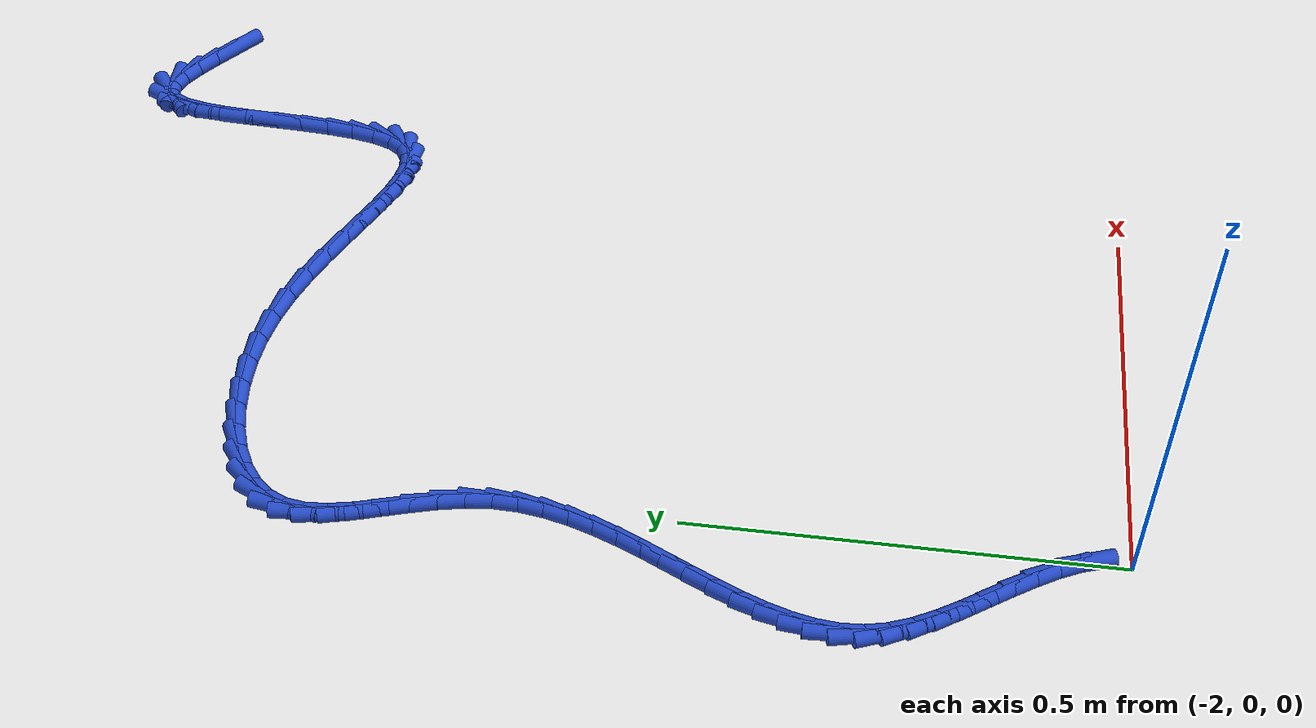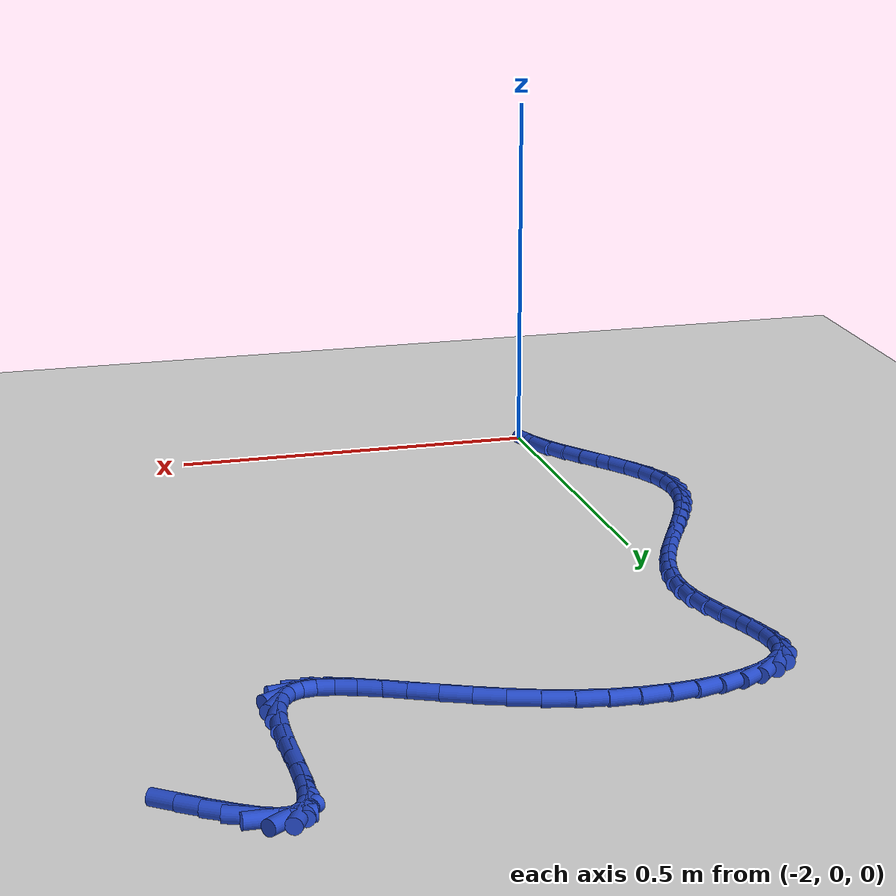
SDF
<sdf version="1.6">
 <world name="default">
  <model name="ground_plane">
   <static>1</static>
   <link name="link">
    <collision name="collision">
     <geometry><plane><normal>0 0 1</normal><size>100 100</size></plane></geometry>
     <surface><friction><ode><mu>100</mu><mu2>50</mu2></ode></friction></surface>
    </collision>
    <visual name="visual">
     <cast_shadows>0</cast_shadows>
     <geometry><plane><normal>0 0 1</normal><size>100 100</size></plane></geometry>
     <material>
      <script><uri>file://media/materials/scripts/gazebo.material</uri><name>Gazebo/WhiteGlow</name></script>
     </material>
    </visual>
   </link>
  </model>
  <model name="line">
   <link name="link_72">
    <pose>-1.277379798885864 1.1923791572805156 0.01 0 1.57 -0.6911740922703492</pose>
    <collision name="collision">
     <geometry><cylinder><radius>0.01</radius><length>0.08</length></cylinder></geometry>
    </collision>
    <visual name="visual">
     <material>
      <script><name>Gazebo/Blue</name><uri>file://media/materials/scripts/gazebo.material</uri></script>
     </material>
     <geometry><cylinder><radius>0.01</radius><length>0.08</length></cylinder></geometry>
    </visual>
   </link>
   <link name="link_73">
    <pose>-1.3031195667674549 1.2136739730584933 0.01 0 1.57 -0.653278388608991</pose>
    <collision name="collision">
     <geometry><cylinder><radius>0.01</radius><length>0.08</length></cylinder></geometry>
    </collision>
    <visual name="visual">
     <material>
      <script><name>Gazebo/Blue</name><uri>file://media/materials/scripts/gazebo.material</uri></script>
     </material>
     <geometry><cylinder><radius>0.01</radius><length>0.08</length></cylinder></geometry>
    </visual>
   </link>
   <link name="link_74">
    <pose>-1.3267890831245506 1.2317903923946183 0.01 0 1.57 -0.5660776129743206</pose>
    <collision name="collision">
     <geometry><cylinder><radius>0.01</radius><length>0.08</length></cylinder></geometry>
    </collision>
    <visual name="visual">
     <material>
      <script><name>Gazebo/Blue</name><uri>file://media/materials/scripts/gazebo.material</uri></script>
     </material>
     <geometry><cylinder><radius>0.01</radius><length>0.08</length></cylinder></geometry>
    </visual>
   </link>
   <link name="link_75">
    <pose>-1.3480082018453312 1.2452740503680673 0.01 0 1.57 -0.3824317665724326</pose>
    <collision name="collision">
     <geometry><cylinder><radius>0.01</radius><length>0.08</length></cylinder></geometry>
    </collision>
    <visual name="visual">
     <material>
      <script><name>Gazebo/Blue</name><uri>file://media/materials/scripts/gazebo.material</uri></script>
     </material>
     <geometry><cylinder><radius>0.01</radius><length>0.08</length></cylinder></geometry>
    </visual>
   </link>
   <link name="link_76">
    <pose>-1.3663967768179746 1.252670582058015 0.01 0 1.57 0.009550415357632583</pose>
    <collision name="collision">
     <geometry><cylinder><radius>0.01</radius><length>0.08</length></cylinder></geometry>
    </collision>
    <visual name="visual">
     <material>
      <script><name>Gazebo/Blue</name><uri>file://media/materials/scripts/gazebo.material</uri></script>
     </material>
     <geometry><cylinder><radius>0.01</radius><length>0.08</length></cylinder></geometry>
    </visual>
   </link>
   <link name="link_77">
    <pose>-1.3815746619306608 1.2525256225436383 0.01 0 1.57 0.6607619640350573</pose>
    <collision name="collision">
     <geometry><cylinder><radius>0.01</radius><length>0.08</length></cylinder></geometry>
    </collision>
    <visual name="visual">
     <material>
      <script><name>Gazebo/Blue</name><uri>file://media/materials/scripts/gazebo.material</uri></script>
     </material>
     <geometry><cylinder><radius>0.01</radius><length>0.08</length></cylinder></geometry>
    </visual>
   </link>
   <link name="link_78">
    <pose>-1.393198279149301 1.2434902761553497 0.01 0 1.57 1.1317001936058362</pose>
    <collision name="collision">
     <geometry><cylinder><radius>0.01</radius><length>0.08</length></cylinder></geometry>
    </collision>
    <visual name="visual">
     <material>
      <script><name>Gazebo/Blue</name><uri>file://media/materials/scripts/gazebo.material</uri></script>
     </material>
     <geometry><cylinder><radius>0.01</radius><length>0.08</length></cylinder></geometry>
    </visual>
   </link>
   <link name="link_79">
    <pose>-1.4014876510909278 1.2258411780787781 0.01 0 1.57 1.347257348268384</pose>
    <collision name="collision">
     <geometry><cylinder><radius>0.01</radius><length>0.08</length></cylinder></geometry>
    </collision>
    <visual name="visual">
     <material>
      <script><name>Gazebo/Blue</name><uri>file://media/materials/scripts/gazebo.material</uri></script>
     </material>
     <geometry><cylinder><radius>0.01</radius><length>0.08</length></cylinder></geometry>
    </visual>
   </link>
   <link name="link_80">
    <pose>-1.4071052230052408 1.2011309940346764 0.01 0 1.57 1.4514332131560044</pose>
    <collision name="collision">
     <geometry><cylinder><radius>0.01</radius><length>0.08</length></cylinder></geometry>
    </collision>
    <visual name="visual">
     <material>
      <script><name>Gazebo/Blue</name><uri>file://media/materials/scripts/gazebo.material</uri></script>
     </material>
     <geometry><cylinder><radius>0.01</radius><length>0.08</length></cylinder></geometry>
    </visual>
   </link>
   <link name="link_81">
    <pose>-1.4107253265207036 1.170946672307879 0.01 0 1.57 1.5034821313970972</pose>
    <collision name="collision">
     <geometry><cylinder><radius>0.01</radius><length>0.08</length></cylinder></geometry>
    </collision>
    <visual name="visual">
     <material>
      <script><name>Gazebo/Blue</name><uri>file://media/materials/scripts/gazebo.material</uri></script>
     </material>
     <geometry><cylinder><radius>0.01</radius><length>0.08</length></cylinder></geometry>
    </visual>
   </link>
   <link name="link_82">
    <pose>-1.4130222932657803 1.1368751611832195 0.01 0 1.57 1.5255129740757205</pose>
    <collision name="collision">
     <geometry><cylinder><radius>0.01</radius><length>0.08</length></cylinder></geometry>
    </collision>
    <visual name="visual">
     <material>
      <script><name>Gazebo/Blue</name><uri>file://media/materials/scripts/gazebo.material</uri></script>
     </material>
     <geometry><cylinder><radius>0.01</radius><length>0.08</length></cylinder></geometry>
    </visual>
   </link>
   <link name="link_83">
    <pose>-1.4146704548689353 1.1005034089455346 0.01 0 1.57 1.5256958518511423</pose>
    <collision name="collision">
     <geometry><cylinder><radius>0.01</radius><length>0.08</length></cylinder></geometry>
    </collision>
    <visual name="visual">
     <material>
      <script><name>Gazebo/Blue</name><uri>file://media/materials/scripts/gazebo.material</uri></script>
     </material>
     <geometry><cylinder><radius>0.01</radius><length>0.08</length></cylinder></geometry>
    </visual>
   </link>
   <link name="link_84">
    <pose>-1.4163441429586323 1.063418363879658 0.01 0 1.57 1.5053430059126676</pose>
    <collision name="collision">
     <geometry><cylinder><radius>0.01</radius><length>0.08</length></cylinder></geometry>
    </collision>
    <visual name="visual">
     <material>
      <script><name>Gazebo/Blue</name><uri>file://media/materials/scripts/gazebo.material</uri></script>
     </material>
     <geometry><cylinder><radius>0.01</radius><length>0.08</length></cylinder></geometry>
    </visual>
   </link>
   <link name="link_85">
    <pose>-1.4187176891633355 1.0272069742704246 0.01 0 1.57 1.4602079251436888</pose>
    <collision name="collision">
     <geometry><cylinder><radius>0.01</radius><length>0.08</length></cylinder></geometry>
    </collision>
    <visual name="visual">
     <material>
      <script><name>Gazebo/Blue</name><uri>file://media/materials/scripts/gazebo.material</uri></script>
     </material>
     <geometry><cylinder><radius>0.01</radius><length>0.08</length></cylinder></geometry>
    </visual>
   </link>
   <link name="link_86">
    <pose>-1.4224654251115088 0.9934561884026691 0.01 0 1.57 1.3780792104758186</pose>
    <collision name="collision">
     <geometry><cylinder><radius>0.01</radius><length>0.08</length></cylinder></geometry>
    </collision>
    <visual name="visual">
     <material>
      <script><name>Gazebo/Blue</name><uri>file://media/materials/scripts/gazebo.material</uri></script>
     </material>
     <geometry><cylinder><radius>0.01</radius><length>0.08</length></cylinder></geometry>
    </visual>
   </link>
   <link name="link_87">
    <pose>-1.4282616824316166 0.9637529545612261 0.01 0 1.57 1.2306075809647454</pose>
    <collision name="collision">
     <geometry><cylinder><radius>0.01</radius><length>0.08</length></cylinder></geometry>
    </collision>
    <visual name="visual">
     <material>
      <script><name>Gazebo/Blue</name><uri>file://media/materials/scripts/gazebo.material</uri></script>
     </material>
     <geometry><cylinder><radius>0.01</radius><length>0.08</length></cylinder></geometry>
    </visual>
   </link>
   <link name="link_88">
    <pose>-1.4367807927521228 0.939684221030931 0.01 0 1.57 0.9559648887873313</pose>
    <collision name="collision">
     <geometry><cylinder><radius>0.01</radius><length>0.08</length></cylinder></geometry>
    </collision>
    <visual name="visual">
     <material>
      <script><name>Gazebo/Blue</name><uri>file://media/materials/scripts/gazebo.material</uri></script>
     </material>
     <geometry><cylinder><radius>0.01</radius><length>0.08</length></cylinder></geometry>
    </visual>
   </link>
   <link name="link_89">
    <pose>-1.4486903600210557 0.9228183663506297 0.01 0 1.57 0.5282815217940532</pose>
    <collision name="collision">
     <geometry><cylinder><radius>0.01</radius><length>0.08</length></cylinder></geometry>
    </collision>
    <visual name="visual">
     <material>
      <script><name>Gazebo/Blue</name><uri>file://media/materials/scripts/gazebo.material</uri></script>
     </material>
     <geometry><cylinder><radius>0.01</radius><length>0.08</length></cylinder></geometry>
    </visual>
   </link>
   <link name="link_90">
    <pose>-1.4642918537074452 0.9137131645368668 0.01 0 1.57 0.11997922675049814</pose>
    <collision name="collision">
     <geometry><cylinder><radius>0.01</radius><length>0.08</length></cylinder></geometry>
    </collision>
    <visual name="visual">
     <material>
      <script><name>Gazebo/Blue</name><uri>file://media/materials/scripts/gazebo.material</uri></script>
     </material>
     <geometry><cylinder><radius>0.01</radius><length>0.08</length></cylinder></geometry>
    </visual>
   </link>
   <link name="link_91">
    <pose>-1.4833398210614142 0.9114167746983349 0.01 0 1.57 -0.15357758555110324</pose>
    <collision name="collision">
     <geometry><cylinder><radius>0.01</radius><length>0.08</length></cylinder></geometry>
    </collision>
    <visual name="visual">
     <material>
      <script><name>Gazebo/Blue</name><uri>file://media/materials/scripts/gazebo.material</uri></script>
     </material>
     <geometry><cylinder><radius>0.01</radius><length>0.08</length></cylinder></geometry>
    </visual>
   </link>
   <link name="link_92">
    <pose>-1.5055440886877856 0.9148539180022854 0.01 0 1.57 -0.31233739051770243</pose>
    <collision name="collision">
     <geometry><cylinder><radius>0.01</radius><length>0.08</length></cylinder></geometry>
    </collision>
    <visual name="visual">
     <material>
      <script><name>Gazebo/Blue</name><uri>file://media/materials/scripts/gazebo.material</uri></script>
     </material>
     <geometry><cylinder><radius>0.01</radius><length>0.08</length></cylinder></geometry>
    </visual>
   </link>
   <link name="link_93">
    <pose>-1.5306144831913844 0.9229493156159698 0.01 0 1.57 -0.3996834214147611</pose>
    <collision name="collision">
     <geometry><cylinder><radius>0.01</radius><length>0.08</length></cylinder></geometry>
    </collision>
    <visual name="visual">
     <material>
      <script><name>Gazebo/Blue</name><uri>file://media/materials/scripts/gazebo.material</uri></script>
     </material>
     <geometry><cylinder><radius>0.01</radius><length>0.08</length></cylinder></geometry>
    </visual>
   </link>
   <link name="link_94">
    <pose>-1.558260831177034 0.9346276887066393 0.01 0 1.57 -0.4425841245334084</pose>
    <collision name="collision">
     <geometry><cylinder><radius>0.01</radius><length>0.08</length></cylinder></geometry>
    </collision>
    <visual name="visual">
     <material>
      <script><name>Gazebo/Blue</name><uri>file://media/materials/scripts/gazebo.material</uri></script>
     </material>
     <geometry><cylinder><radius>0.01</radius><length>0.08</length></cylinder></geometry>
    </visual>
   </link>
   <link name="link_95">
    <pose>-1.5881929592495598 0.9488137584415455 0.01 0 1.57 -0.45495617971721114</pose>
    <collision name="collision">
     <geometry><cylinder><radius>0.01</radius><length>0.08</length></cylinder></geometry>
    </collision>
    <visual name="visual">
     <material>
      <script><name>Gazebo/Blue</name><uri>file://media/materials/scripts/gazebo.material</uri></script>
     </material>
     <geometry><cylinder><radius>0.01</radius><length>0.08</length></cylinder></geometry>
    </visual>
   </link>
   <link name="link_96">
    <pose>-1.620120694013785 0.9644322459879396 0.01 0 1.57 -0.44344522388283564</pose>
    <collision name="collision">
     <geometry><cylinder><radius>0.01</radius><length>0.08</length></cylinder></geometry>
    </collision>
    <visual name="visual">
     <material>
      <script><name>Gazebo/Blue</name><uri>file://media/materials/scripts/gazebo.material</uri></script>
     </material>
     <geometry><cylinder><radius>0.01</radius><length>0.08</length></cylinder></geometry>
    </visual>
   </link>
   <link name="link_97">
    <pose>-1.6537538620745333 0.980407872513073 0.01 0 1.57 -0.41058412466750055</pose>
    <collision name="collision">
     <geometry><cylinder><radius>0.01</radius><length>0.08</length></cylinder></geometry>
    </collision>
    <visual name="visual">
     <material>
      <script><name>Gazebo/Blue</name><uri>file://media/materials/scripts/gazebo.material</uri></script>
     </material>
     <geometry><cylinder><radius>0.01</radius><length>0.08</length></cylinder></geometry>
    </visual>
   </link>
   <link name="link_98">
    <pose>-1.6888022900366297 0.9956653591841974 0.01 0 1.57 -0.3563205607134158</pose>
    <collision name="collision">
     <geometry><cylinder><radius>0.01</radius><length>0.08</length></cylinder></geometry>
    </collision>
    <visual name="visual">
     <material>
      <script><name>Gazebo/Blue</name><uri>file://media/materials/scripts/gazebo.material</uri></script>
     </material>
     <geometry><cylinder><radius>0.01</radius><length>0.08</length></cylinder></geometry>
    </visual>
   </link>
   <link name="link_99">
    <pose>-1.7249758045048984 1.0091294271685638 0.01 0 1.57 -0.27883949510979833</pose>
    <collision name="collision">
     <geometry><cylinder><radius>0.01</radius><length>0.08</length></cylinder></geometry>
    </collision>
    <visual name="visual">
     <material>
      <script><name>Gazebo/Blue</name><uri>file://media/materials/scripts/gazebo.material</uri></script>
     </material>
     <geometry><cylinder><radius>0.01</radius><length>0.08</length></cylinder></geometry>
    </visual>
   </link>
   <link name="link_100">
    <pose>-1.7619842069642184 1.0197248691457574 0.01 0 1.57 -0.18211839078773046</pose>
    <collision name="collision">
     <geometry><cylinder><radius>0.01</radius><length>0.08</length></cylinder></geometry>
    </collision>
    <visual name="visual">
     <material>
      <script><name>Gazebo/Blue</name><uri>file://media/materials/scripts/gazebo.material</uri></script>
     </material>
     <geometry><cylinder><radius>0.01</radius><length>0.08</length></cylinder></geometry>
    </visual>
   </link>
   <link name="link_101">
    <pose>-1.7994501565377172 1.0266245576995257 0.01 0 1.57 -0.08513958704428101</pose>
    <collision name="collision">
     <geometry><cylinder><radius>0.01</radius><length>0.08</length></cylinder></geometry>
    </collision>
    <visual name="visual">
     <material>
      <script><name>Gazebo/Blue</name><uri>file://media/materials/scripts/gazebo.material</uri></script>
     </material>
     <geometry><cylinder><radius>0.01</radius><length>0.08</length></cylinder></geometry>
    </visual>
   </link>
   <link name="link_102">
    <pose>-1.8367140640891886 1.0298048795681447 0.01 0 1.57 0.01101258214515627</pose>
    <collision name="collision">
     <geometry><cylinder><radius>0.01</radius><length>0.08</length></cylinder></geometry>
    </collision>
    <visual name="visual">
     <material>
      <script><name>Gazebo/Blue</name><uri>file://media/materials/scripts/gazebo.material</uri></script>
     </material>
     <geometry><cylinder><radius>0.01</radius><length>0.08</length></cylinder></geometry>
    </visual>
   </link>
   <link name="link_103">
    <pose>-1.873059299233742 1.0294046084991793 0.01 0 1.57 0.11024258815331767</pose>
    <collision name="collision">
     <geometry><cylinder><radius>0.01</radius><length>0.08</length></cylinder></geometry>
    </collision>
    <visual name="visual">
     <material>
      <script><name>Gazebo/Blue</name><uri>file://media/materials/scripts/gazebo.material</uri></script>
     </material>
     <geometry><cylinder><radius>0.01</radius><length>0.08</length></cylinder></geometry>
    </visual>
   </link>
   <link name="link_104">
    <pose>-1.9077692315864865 1.0255625182401924 0.01 0 1.57 0.21732766815232155</pose>
    <collision name="collision">
     <geometry><cylinder><radius>0.01</radius><length>0.08</length></cylinder></geometry>
    </collision>
    <visual name="visual">
     <material>
      <script><name>Gazebo/Blue</name><uri>file://media/materials/scripts/gazebo.material</uri></script>
     </material>
     <geometry><cylinder><radius>0.01</radius><length>0.08</length></cylinder></geometry>
    </visual>
   </link>
   <link name="link_105">
    <pose>-1.9401272307625312 1.0184173825387492 0.01 0 1.57 0.33844104684467274</pose>
    <collision name="collision">
     <geometry><cylinder><radius>0.01</radius><length>0.08</length></cylinder></geometry>
    </collision>
    <visual name="visual">
     <material>
      <script><name>Gazebo/Blue</name><uri>file://media/materials/scripts/gazebo.material</uri></script>
     </material>
     <geometry><cylinder><radius>0.01</radius><length>0.08</length></cylinder></geometry>
    </visual>
   </link>
   <link name="link_106">
    <pose>-1.9694166663769856 1.0081079751424131 0.01 0 1.57 0.481760449741731</pose>
    <collision name="collision">
     <geometry><cylinder><radius>0.01</radius><length>0.08</length></cylinder></geometry>
    </collision>
    <visual name="visual">
     <material>
      <script><name>Gazebo/Blue</name><uri>file://media/materials/scripts/gazebo.material</uri></script>
     </material>
     <geometry><cylinder><radius>0.01</radius><length>0.08</length></cylinder></geometry>
    </visual>
   </link>
   <link name="link_107">
    <pose>-1.994920908044958 0.9947730697987478 0.01 0 1.57 0.6576646419309105</pose>
    <collision name="collision">
     <geometry><cylinder><radius>0.01</radius><length>0.08</length></cylinder></geometry>
    </collision>
    <visual name="visual">
     <material>
      <script><name>Gazebo/Blue</name><uri>file://media/materials/scripts/gazebo.material</uri></script>
     </material>
     <geometry><cylinder><radius>0.01</radius><length>0.08</length></cylinder></geometry>
    </visual>
   </link>
   <link name="link_108">
    <pose>-2.0159233253815585 0.9785514402553174 0.01 0 1.57 0.8768058261167104</pose>
    <collision name="collision">
     <geometry><cylinder><radius>0.01</radius><length>0.08</length></cylinder></geometry>
    </collision>
    <visual name="visual">
     <material>
      <script><name>Gazebo/Blue</name><uri>file://media/materials/scripts/gazebo.material</uri></script>
     </material>
     <geometry><cylinder><radius>0.01</radius><length>0.08</length></cylinder></geometry>
    </visual>
   </link>
   <link name="link_109">
    <pose>-2.0317072880018965 0.9595818602596857 0.01 0 1.57 1.142620151649802</pose>
    <collision name="collision">
     <geometry><cylinder><radius>0.01</radius><length>0.08</length></cylinder></geometry>
    </collision>
    <visual name="visual">
     <material>
      <script><name>Gazebo/Blue</name><uri>file://media/materials/scripts/gazebo.material</uri></script>
     </material>
     <geometry><cylinder><radius>0.01</radius><length>0.08</length></cylinder></geometry>
    </visual>
   </link>
   <link name="link_110">
    <pose>-2.0415561655210803 0.938003103559417 0.01 0 1.57 1.4251434250210107</pose>
    <collision name="collision">
     <geometry><cylinder><radius>0.01</radius><length>0.08</length></cylinder></geometry>
    </collision>
    <visual name="visual">
     <material>
      <script><name>Gazebo/Blue</name><uri>file://media/materials/scripts/gazebo.material</uri></script>
     </material>
     <geometry><cylinder><radius>0.01</radius><length>0.08</length></cylinder></geometry>
    </visual>
   </link>
   <link name="link_111">
    <pose>-2.0450787075971104 0.9139898723724422 0.01 0 1.57 -1.5035816060234533</pose>
    <collision name="collision">
     <geometry><cylinder><radius>0.01</radius><length>0.08</length></cylinder></geometry>
    </collision>
    <visual name="visual">
     <material>
      <script><name>Gazebo/Blue</name><uri>file://media/materials/scripts/gazebo.material</uri></script>
     </material>
     <geometry><cylinder><radius>0.01</radius><length>0.08</length></cylinder></geometry>
    </visual>
   </link>
   <link name="link_112">
    <pose>-2.043320793053385 0.8878755567457736 0.01 0 1.57 -1.3724267211832306</pose>
    <collision name="collision">
     <geometry><cylinder><radius>0.01</radius><length>0.08</length></cylinder></geometry>
    </collision>
    <visual name="visual">
     <material>
      <script><name>Gazebo/Blue</name><uri>file://media/materials/scripts/gazebo.material</uri></script>
     </material>
     <geometry><cylinder><radius>0.01</radius><length>0.08</length></cylinder></geometry>
    </visual>
   </link>
   <link name="link_113">
    <pose>-2.037724944712695 0.8600373441641876 0.01 0 1.57 -1.3035328572244878</pose>
    <collision name="collision">
     <geometry><cylinder><radius>0.01</radius><length>0.08</length></cylinder></geometry>
    </collision>
    <visual name="visual">
     <material>
      <script><name>Gazebo/Blue</name><uri>file://media/materials/scripts/gazebo.material</uri></script>
     </material>
     <geometry><cylinder><radius>0.01</radius><length>0.08</length></cylinder></geometry>
    </visual>
   </link>
   <link name="link_114">
    <pose>-2.0297336983505194 0.8308524235426986 0.01 0 1.57 -1.2824525113524032</pose>
    <collision name="collision">
     <geometry><cylinder><radius>0.01</radius><length>0.08</length></cylinder></geometry>
    </collision>
    <visual name="visual">
     <material>
      <script><name>Gazebo/Blue</name><uri>file://media/materials/scripts/gazebo.material</uri></script>
     </material>
     <geometry><cylinder><radius>0.01</radius><length>0.08</length></cylinder></geometry>
    </visual>
   </link>
   <link name="link_115">
    <pose>-2.020789589742339 0.8006979837963196 0.01 0 1.57 -1.3024581355600389</pose>
    <collision name="collision">
     <geometry><cylinder><radius>0.01</radius><length>0.08</length></cylinder></geometry>
    </collision>
    <visual name="visual">
     <material>
      <script><name>Gazebo/Blue</name><uri>file://media/materials/scripts/gazebo.material</uri></script>
     </material>
     <geometry><cylinder><radius>0.01</radius><length>0.08</length></cylinder></geometry>
    </visual>
   </link>
   <link name="link_116">
    <pose>-2.0123351546636337 0.7699512138400636 0.01 0 1.57 -1.363178601462297</pose>
    <collision name="collision">
     <geometry><cylinder><radius>0.01</radius><length>0.08</length></cylinder></geometry>
    </collision>
    <visual name="visual">
     <material>
      <script><name>Gazebo/Blue</name><uri>file://media/materials/scripts/gazebo.material</uri></script>
     </material>
     <geometry><cylinder><radius>0.01</radius><length>0.08</length></cylinder></geometry>
    </visual>
   </link>
   <link name="link_117">
    <pose>-2.005812928889881 0.7389893025889431 0.01 0 1.57 -1.468480324550072</pose>
    <collision name="collision">
     <geometry><cylinder><radius>0.01</radius><length>0.08</length></cylinder></geometry>
    </collision>
    <visual name="visual">
     <material>
      <script><name>Gazebo/Blue</name><uri>file://media/materials/scripts/gazebo.material</uri></script>
     </material>
     <geometry><cylinder><radius>0.01</radius><length>0.08</length></cylinder></geometry>
    </visual>
   </link>
   <link name="link_118">
    <pose>-2.0026502649711344 0.7081864960272543 0.01 0 1.57 1.542910128136743</pose>
    <collision name="collision">
     <geometry><cylinder><radius>0.01</radius><length>0.08</length></cylinder></geometry>
    </collision>
    <visual name="visual">
     <material>
      <script><name>Gazebo/Blue</name><uri>file://media/materials/scripts/gazebo.material</uri></script>
     </material>
     <geometry><cylinder><radius>0.01</radius><length>0.08</length></cylinder></geometry>
    </visual>
   </link>
   <link name="link_119">
    <pose>-2.0034987779427125 0.6777666806671037 0.01 0 1.57 1.4259459317180836</pose>
    <collision name="collision">
     <geometry><cylinder><radius>0.01</radius><length>0.08</length></cylinder></geometry>
    </collision>
    <visual name="visual">
     <material>
      <script><name>Gazebo/Blue</name><uri>file://media/materials/scripts/gazebo.material</uri></script>
     </material>
     <geometry><cylinder><radius>0.01</radius><length>0.08</length></cylinder></geometry>
    </visual>
   </link>
   <link name="link_120">
    <pose>-2.007879614778914 0.647734626917854 0.01 0 1.57 1.3280149104617016</pose>
    <collision name="collision">
     <geometry><cylinder><radius>0.01</radius><length>0.08</length></cylinder></geometry>
    </collision>
    <visual name="visual">
     <material>
      <script><name>Gazebo/Blue</name><uri>file://media/materials/scripts/gazebo.material</uri></script>
     </material>
     <geometry><cylinder><radius>0.01</radius><length>0.08</length></cylinder></geometry>
    </visual>
   </link>
   <link name="link_121">
    <pose>-2.0152246241479865 0.6180777966973867 0.01 0 1.57 1.2497735999832393</pose>
    <collision name="collision">
     <geometry><cylinder><radius>0.01</radius><length>0.08</length></cylinder></geometry>
    </collision>
    <visual name="visual">
     <material>
      <script><name>Gazebo/Blue</name><uri>file://media/materials/scripts/gazebo.material</uri></script>
     </material>
     <geometry><cylinder><radius>0.01</radius><length>0.08</length></cylinder></geometry>
    </visual>
   </link>
   <link name="link_122">
    <pose>-2.0249656547181756 0.5887836519235833 0.01 0 1.57 1.1905490536556496</pose>
    <collision name="collision">
     <geometry><cylinder><radius>0.01</radius><length>0.08</length></cylinder></geometry>
    </collision>
    <visual name="visual">
     <material>
      <script><name>Gazebo/Blue</name><uri>file://media/materials/scripts/gazebo.material</uri></script>
     </material>
     <geometry><cylinder><radius>0.01</radius><length>0.08</length></cylinder></geometry>
    </visual>
   </link>
   <link name="link_123">
    <pose>-2.0365345551577296 0.5598396545143264 0.01 0 1.57 1.149229678133355</pose>
    <collision name="collision">
     <geometry><cylinder><radius>0.01</radius><length>0.08</length></cylinder></geometry>
    </collision>
    <visual name="visual">
     <material>
      <script><name>Gazebo/Blue</name><uri>file://media/materials/scripts/gazebo.material</uri></script>
     </material>
     <geometry><cylinder><radius>0.01</radius><length>0.08</length></cylinder></geometry>
    </visual>
   </link>
   <link name="link_124">
    <pose>-2.0493631741348945 0.5312332663874972 0.01 0 1.57 1.1248536973077818</pose>
    <collision name="collision">
     <geometry><cylinder><radius>0.01</radius><length>0.08</length></cylinder></geometry>
    </collision>
    <visual name="visual">
     <material>
      <script><name>Gazebo/Blue</name><uri>file://media/materials/scripts/gazebo.material</uri></script>
     </material>
     <geometry><cylinder><radius>0.01</radius><length>0.08</length></cylinder></geometry>
    </visual>
   </link>
   <link name="link_125">
    <pose>-2.062883360317916 0.5029519494609775 0.01 0 1.57 1.1169438663822806</pose>
    <collision name="collision">
     <geometry><cylinder><radius>0.01</radius><length>0.08</length></cylinder></geometry>
    </collision>
    <visual name="visual">
     <material>
      <script><name>Gazebo/Blue</name><uri>file://media/materials/scripts/gazebo.material</uri></script>
     </material>
     <geometry><cylinder><radius>0.01</radius><length>0.08</length></cylinder></geometry>
    </visual>
   </link>
   <link name="link_126">
    <pose>-2.0765269623750435 0.47498316565264864 0.01 0 1.57 1.125692280943015</pose>
    <collision name="collision">
     <geometry><cylinder><radius>0.01</radius><length>0.08</length></cylinder></geometry>
    </collision>
    <visual name="visual">
     <material>
      <script><name>Gazebo/Blue</name><uri>file://media/materials/scripts/gazebo.material</uri></script>
     </material>
     <geometry><cylinder><radius>0.01</radius><length>0.08</length></cylinder></geometry>
    </visual>
   </link>
   <link name="link_127">
    <pose>-2.089725828974522 0.44731437688039305 0.01 0 1.57 1.152068937846194</pose>
    <collision name="collision">
     <geometry><cylinder><radius>0.01</radius><length>0.08</length></cylinder></geometry>
    </collision>
    <visual name="visual">
     <material>
      <script><name>Gazebo/Blue</name><uri>file://media/materials/scripts/gazebo.material</uri></script>
     </material>
     <geometry><cylinder><radius>0.01</radius><length>0.08</length></cylinder></geometry>
    </visual>
   </link>
   <link name="link_128">
    <pose>-2.1019118087845983 0.4199330450620923 0.01 0 1.57 1.1978698905211755</pose>
    <collision name="collision">
     <geometry><cylinder><radius>0.01</radius><length>0.08</length></cylinder></geometry>
    </collision>
    <visual name="visual">
     <material>
      <script><name>Gazebo/Blue</name><uri>file://media/materials/scripts/gazebo.material</uri></script>
     </material>
     <geometry><cylinder><radius>0.01</radius><length>0.08</length></cylinder></geometry>
    </visual>
   </link>
   <link name="link_129">
    <pose>-2.112516750473519 0.39282663211562774 0.01 0 1.57 1.2656394975356575</pose>
    <collision name="collision">
     <geometry><cylinder><radius>0.01</radius><length>0.08</length></cylinder></geometry>
    </collision>
    <visual name="visual">
     <material>
      <script><name>Gazebo/Blue</name><uri>file://media/materials/scripts/gazebo.material</uri></script>
     </material>
     <geometry><cylinder><radius>0.01</radius><length>0.08</length></cylinder></geometry>
    </visual>
   </link>
   <link name="link_130">
    <pose>-2.1209725027095327 0.36598259995888144 0.01 0 1.57 1.3582777219472795</pose>
    <collision name="collision">
     <geometry><cylinder><radius>0.01</radius><length>0.08</length></cylinder></geometry>
    </collision>
    <visual name="visual">
     <material>
      <script><name>Gazebo/Blue</name><uri>file://media/materials/scripts/gazebo.material</uri></script>
     </material>
     <geometry><cylinder><radius>0.01</radius><length>0.08</length></cylinder></geometry>
    </visual>
   </link>
   <link name="link_131">
    <pose>-2.1267109141608853 0.3393884105097346 0.01 0 1.57 1.477998024554266</pose>
    <collision name="collision">
     <geometry><cylinder><radius>0.01</radius><length>0.08</length></cylinder></geometry>
    </collision>
    <visual name="visual">
     <material>
      <script><name>Gazebo/Blue</name><uri>file://media/materials/scripts/gazebo.material</uri></script>
     </material>
     <geometry><cylinder><radius>0.01</radius><length>0.08</length></cylinder></geometry>
    </visual>
   </link>
   <link name="link_132">
    <pose>-2.1291638334958223 0.3130315256860697 0.01 0 1.57 -1.5172459442200044</pose>
    <collision name="collision">
     <geometry><cylinder><radius>0.01</radius><length>0.08</length></cylinder></geometry>
    </collision>
    <visual name="visual">
     <material>
      <script><name>Gazebo/Blue</name><uri>file://media/materials/scripts/gazebo.material</uri></script>
     </material>
     <geometry><cylinder><radius>0.01</radius><length>0.08</length></cylinder></geometry>
    </visual>
   </link>
   <link name="link_133">
    <pose>-2.1277631093825917 0.2868994074057681 0.01 0 1.57 -1.3507930163217925</pose>
    <collision name="collision">
     <geometry><cylinder><radius>0.01</radius><length>0.08</length></cylinder></geometry>
    </collision>
    <visual name="visual">
     <material>
      <script><name>Gazebo/Blue</name><uri>file://media/materials/scripts/gazebo.material</uri></script>
     </material>
     <geometry><cylinder><radius>0.01</radius><length>0.08</length></cylinder></geometry>
    </visual>
   </link>
   <link name="link_134">
    <pose>-2.1219667308932157 0.26097908102942047 0.01 0 1.57 -1.1993577352950455</pose>
    <collision name="collision">
     <geometry><cylinder><radius>0.01</radius><length>0.08</length></cylinder></geometry>
    </collision>
    <visual name="visual">
     <material>
      <script><name>Gazebo/Blue</name><uri>file://media/materials/scripts/gazebo.material</uri></script>
     </material>
     <geometry><cylinder><radius>0.01</radius><length>0.08</length></cylinder></geometry>
    </visual>
   </link>
   <link name="link_135">
    <pose>-2.11194309060859 0.23524570783800514 0.01 0 1.57 -1.0912224670594124</pose>
    <collision name="collision">
     <geometry><cylinder><radius>0.01</radius><length>0.08</length></cylinder></geometry>
    </collision>
    <visual name="visual">
     <material>
      <script><name>Gazebo/Blue</name><uri>file://media/materials/scripts/gazebo.material</uri></script>
     </material>
     <geometry><cylinder><radius>0.01</radius><length>0.08</length></cylinder></geometry>
    </visual>
   </link>
   <link name="link_136">
    <pose>-2.098637515357775 0.20966147393760737 0.01 0 1.57 -1.0212322283032311</pose>
    <collision name="collision">
     <geometry><cylinder><radius>0.01</radius><length>0.08</length></cylinder></geometry>
    </collision>
    <visual name="visual">
     <material>
      <script><name>Gazebo/Blue</name><uri>file://media/materials/scripts/gazebo.material</uri></script>
     </material>
     <geometry><cylinder><radius>0.01</radius><length>0.08</length></cylinder></geometry>
    </visual>
   </link>
   <link name="link_137">
    <pose>-2.0830348119597044 0.18418790609952876 0.01 0 1.57 -0.9833178860788786</pose>
    <collision name="collision">
     <geometry><cylinder><radius>0.01</radius><length>0.08</length></cylinder></geometry>
    </collision>
    <visual name="visual">
     <material>
      <script><name>Gazebo/Blue</name><uri>file://media/materials/scripts/gazebo.material</uri></script>
     </material>
     <geometry><cylinder><radius>0.01</radius><length>0.08</length></cylinder></geometry>
    </visual>
   </link>
   <link name="link_138">
    <pose>-2.066119787233312 0.15878653109507126 0.01 0 1.57 -0.9738209605882284</pose>
    <collision name="collision">
     <geometry><cylinder><radius>0.01</radius><length>0.08</length></cylinder></geometry>
    </collision>
    <visual name="visual">
     <material>
      <script><name>Gazebo/Blue</name><uri>file://media/materials/scripts/gazebo.material</uri></script>
     </material>
     <geometry><cylinder><radius>0.01</radius><length>0.08</length></cylinder></geometry>
    </visual>
   </link>
   <link name="link_139">
    <pose>-2.0488772479975332 0.13341887569553695 0.01 0 1.57 -0.9918436902243039</pose>
    <collision name="collision">
     <geometry><cylinder><radius>0.01</radius><length>0.08</length></cylinder></geometry>
    </collision>
    <visual name="visual">
     <material>
      <script><name>Gazebo/Blue</name><uri>file://media/materials/scripts/gazebo.material</uri></script>
     </material>
     <geometry><cylinder><radius>0.01</radius><length>0.08</length></cylinder></geometry>
    </visual>
   </link>
   <link name="link_140">
    <pose>-2.0322920010713004 0.10804646667222739 0.01 0 1.57 -1.0392835179491355</pose>
    <collision name="collision">
     <geometry><cylinder><radius>0.01</radius><length>0.08</length></cylinder></geometry>
    </collision>
    <visual name="visual">
     <material>
      <script><name>Gazebo/Blue</name><uri>file://media/materials/scripts/gazebo.material</uri></script>
     </material>
     <geometry><cylinder><radius>0.01</radius><length>0.08</length></cylinder></geometry>
    </visual>
   </link>
   <link name="link_141">
    <pose>-2.0173488532735493 0.08263083079644538 0.01 0 1.57 -1.1208082658121743</pose>
    <collision name="collision">
     <geometry><cylinder><radius>0.01</radius><length>0.08</length></cylinder></geometry>
    </collision>
    <visual name="visual">
     <material>
      <script><name>Gazebo/Blue</name><uri>file://media/materials/scripts/gazebo.material</uri></script>
     </material>
     <geometry><cylinder><radius>0.01</radius><length>0.08</length></cylinder></geometry>
    </visual>
   </link>
   <link name="link_142">
    <pose>-2.005032611423214 0.057133494839492545 0.01 0 1.57 -1.2414533679913344</pose>
    <collision name="collision">
     <geometry><cylinder><radius>0.01</radius><length>0.08</length></cylinder></geometry>
    </collision>
    <visual name="visual">
     <material>
      <script><name>Gazebo/Blue</name><uri>file://media/materials/scripts/gazebo.material</uri></script>
     </material>
     <geometry><cylinder><radius>0.01</radius><length>0.08</length></cylinder></geometry>
    </visual>
   </link>
  </model>
 </world>
</sdf>
